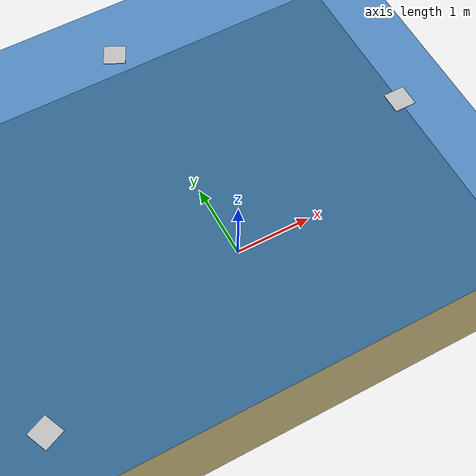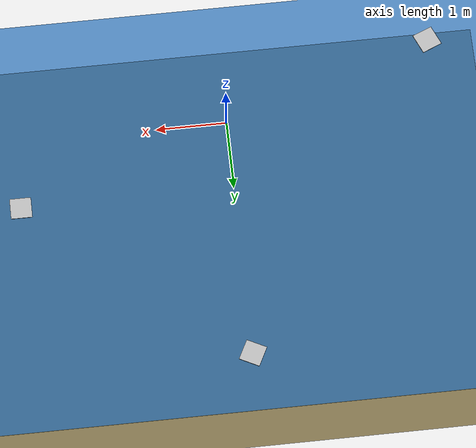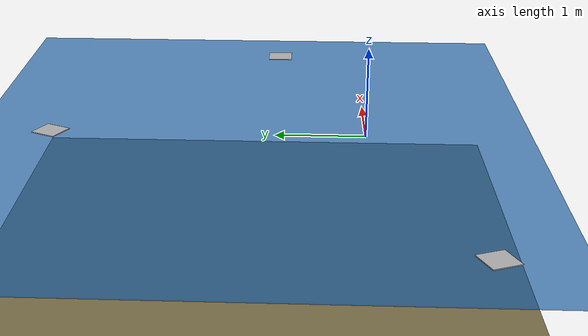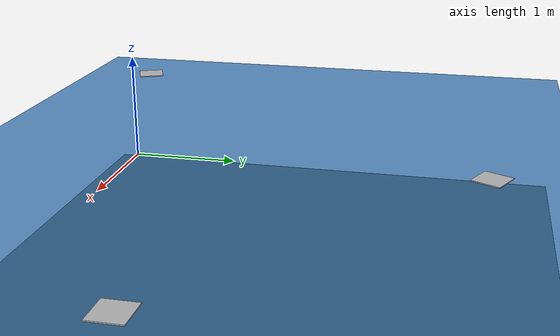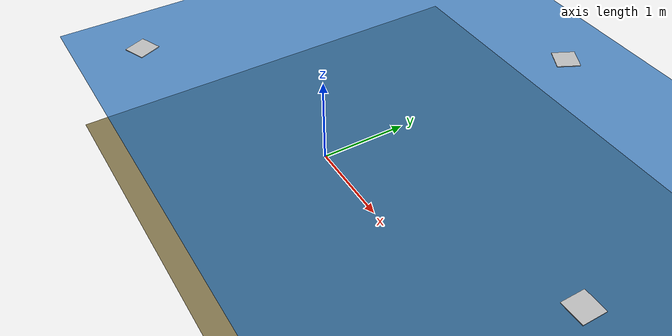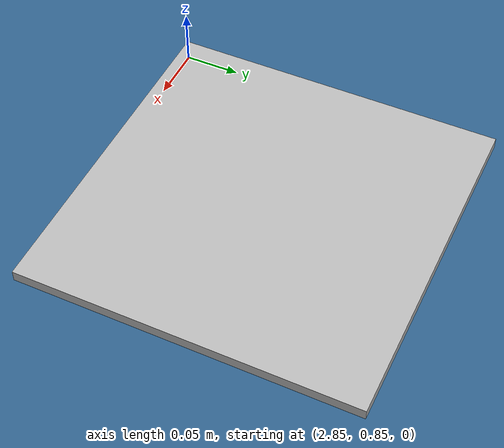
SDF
<?xml version="1.0"?>
<sdf version="1.6">
  <world name="lake_world">

    <physics name="default_physics" default="true" type="ode">
      <max_step_size>0.001</max_step_size>
      <real_time_factor>1</real_time_factor>
      <real_time_update_rate>1000</real_time_update_rate>
    </physics>

    <!-- Defined directly instead of using model://sun, so this world
         loads with zero internet/model-database dependency. -->
    <light name="sun" type="directional">
      <cast_shadows>true</cast_shadows>
      <pose>0 0 10 0 0 0</pose>
      <diffuse>0.8 0.8 0.8 1</diffuse>
      <specular>0.2 0.2 0.2 1</specular>
      <attenuation>
        <range>1000</range>
        <constant>0.9</constant>
        <linear>0.01</linear>
        <quadratic>0.001</quadratic>
      </attenuation>
      <direction>-0.5 0.1 -0.9</direction>
    </light>

    <!-- Lakebed, purely visual context below the water -->
    <model name="lakebed">
      <static>true</static>
      <pose>0 0 -1.5 0 0 0</pose>
      <link name="link">
        <collision name="collision">
          <geometry>
            <plane><normal>0 0 1</normal><size>60 60</size></plane>
          </geometry>
        </collision>
        <visual name="visual">
          <geometry>
            <plane><normal>0 0 1</normal><size>60 60</size></plane>
          </geometry>
          <material>
            <ambient>0.5 0.45 0.3 1</ambient>
            <diffuse>0.5 0.45 0.3 1</diffuse>
          </material>
        </visual>
      </link>
    </model>

    <!-- Water surface, a flat semi-transparent plane at z=0.
         The ASVs are kinematic and spawned at z~0.1 (half their hull
         height) so they sit right at this surface. -->
    <model name="water_surface">
      <static>true</static>
      <pose>0 0 0 0 0 0</pose>
      <link name="link">
        <collision name="collision">
          <geometry>
            <box><size>60 60 0.01</size></box>
          </geometry>
        </collision>
        <visual name="visual">
          <geometry>
            <box><size>60 60 0.01</size></box>
          </geometry>
          <material>
            <ambient>0.1 0.3 0.6 0.7</ambient>
            <diffuse>0.1 0.4 0.7 0.7</diffuse>
            <specular>0.2 0.3 0.4 0.7</specular>
          </material>
          <transparency>0.3</transparency>
        </visual>
      </link>
    </model>

    <include>
      <name>waste_marker_0</name>
      <uri>model://apriltag_0</uri>
      <pose>3 1 0.015 0 0 0</pose>
    </include>
    <include>
      <name>waste_marker_1</name>
      <uri>model://apriltag_1</uri>
      <pose>-3 -1 0.015 0 0 0.4</pose>
    </include>
    <include>
      <name>waste_marker_2</name>
      <uri>model://apriltag_2</uri>
      <pose>0 3.5 0.015 0 0 1.1</pose>
    </include>

    <gravity>0 0 -9.8</gravity>

  </world>
</sdf>

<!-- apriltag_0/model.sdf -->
<sdf version="1.6">
  <model name="apriltag_0">
    <static>true</static>
    <link name="link">
      <!-- thin floating marker, sits flush on the water surface -->
      <visual name="visual">
        <geometry>
          <box><size>0.3 0.3 0.01</size></box>
        </geometry>
        <material>
          <script>
            <uri>model://apriltag_0/materials/scripts</uri>
            <uri>model://apriltag_0/materials/textures</uri>
            <name>AprilTag0/Tag</name>
          </script>
        </material>
      </visual>
      <collision name="collision">
        <geometry>
          <box><size>0.3 0.3 0.01</size></box>
        </geometry>
      </collision>
    </link>
  </model>
</sdf>

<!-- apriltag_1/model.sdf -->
<sdf version="1.6">
  <model name="apriltag_1">
    <static>true</static>
    <link name="link">
      <!-- thin floating marker, sits flush on the water surface -->
      <visual name="visual">
        <geometry>
          <box><size>0.3 0.3 0.01</size></box>
        </geometry>
        <material>
          <script>
            <uri>model://apriltag_1/materials/scripts</uri>
            <uri>model://apriltag_1/materials/textures</uri>
            <name>AprilTag1/Tag</name>
          </script>
        </material>
      </visual>
      <collision name="collision">
        <geometry>
          <box><size>0.3 0.3 0.01</size></box>
        </geometry>
      </collision>
    </link>
  </model>
</sdf>

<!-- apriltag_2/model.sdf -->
<sdf version="1.6">
  <model name="apriltag_2">
    <static>true</static>
    <link name="link">
      <!-- thin floating marker, sits flush on the water surface -->
      <visual name="visual">
        <geometry>
          <box><size>0.3 0.3 0.01</size></box>
        </geometry>
        <material>
          <script>
            <uri>model://apriltag_2/materials/scripts</uri>
            <uri>model://apriltag_2/materials/textures</uri>
            <name>AprilTag2/Tag</name>
          </script>
        </material>
      </visual>
      <collision name="collision">
        <geometry>
          <box><size>0.3 0.3 0.01</size></box>
        </geometry>
      </collision>
    </link>
  </model>
</sdf>
